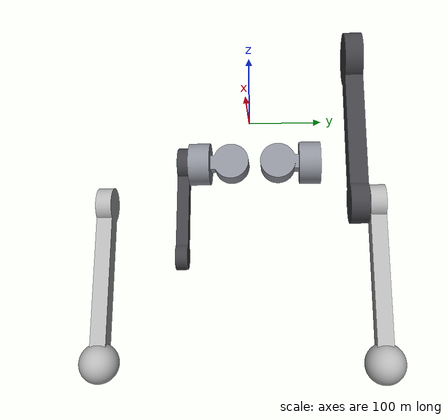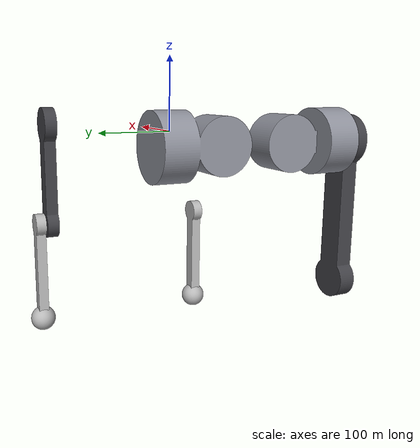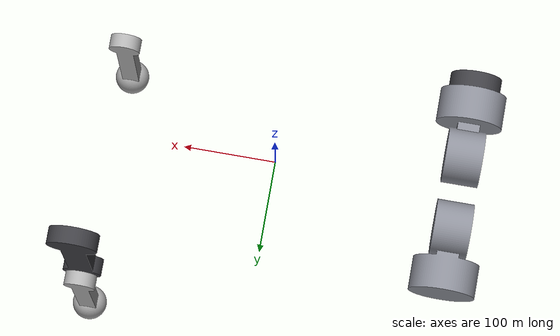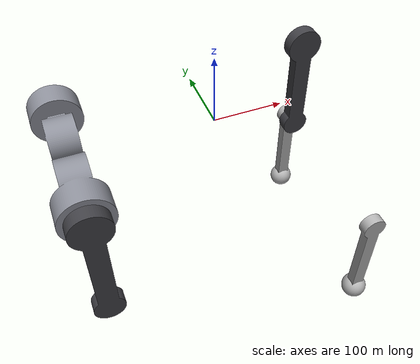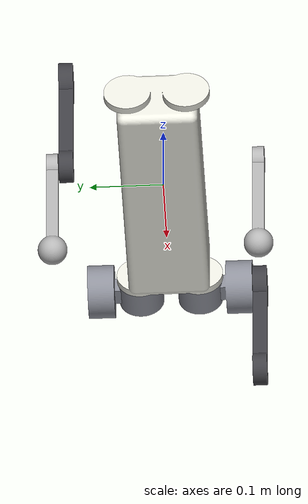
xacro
<?xml version="1.0"?>
<robot name="robot_dog" xmlns:xacro="http://www.ros.org/wiki/xacro">
  <xacro:arg name="sim_mode" default="none"/>
  <xacro:arg name="isaac_command" default="position"/>

  <xacro:include filename="$(find robot_dog_description)/urdf/robot_dog_core.xacro"/>
  <xacro:include filename="$(find robot_dog_description)/urdf/robot_dog.ros2_control.xacro"/>
  <xacro:include filename="$(find robot_dog_description)/urdf/robot_dog.gazebo.xacro"/>

  <xacro:robot_dog_ros2_control mode="$(arg sim_mode)" isaac_command="$(arg isaac_command)"/>
  <xacro:if value="${'$(arg sim_mode)' == 'gazebo'}">
    <xacro:robot_dog_gazebo controllers_file="$(find robot_dog_description)/config/ros2_controllers.yaml"/>
  </xacro:if>
</robot>

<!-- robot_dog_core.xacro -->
<!-- Generated by tools/generate_description.py from the Fusion export. Do not edit by hand. -->
<robot xmlns:xacro="http://www.ros.org/wiki/xacro">
  <material name="white"><color rgba="0.92 0.92 0.88 1"/></material>
  <material name="metal"><color rgba="0.55 0.56 0.60 1"/></material>
  <material name="dark_grey"><color rgba="0.25 0.25 0.27 1"/></material>
  <material name="light_grey"><color rgba="0.70 0.70 0.70 1"/></material>
  <link name="base_link">
    <inertial>
      <origin xyz="0.00620128 0 0.00442227" rpy="0 0 0"/>
      <mass value="4.13176"/>
      <inertia ixx="0.00788716" ixy="0" ixz="-0.00161128" iyy="0.0506551" iyz="0" izz="0.0512174"/>
    </inertial>
    <visual>
      <origin xyz="0 0 0" rpy="0 0 0"/>
      <geometry><mesh filename="package://robot_dog_description/meshes/base_link.stl"/></geometry>
      <material name="white"/>
    </visual>
    <collision name="base_link_collision_0">
      <origin xyz="0 0 0" rpy="0 0 0"/>
      <geometry><box size="0.34 0.11 0.09"/></geometry>
    </collision>
  </link>
  <link name="FL_hip">
    <inertial>
      <origin xyz="0 0.0305117 0" rpy="0 0 0"/>
      <mass value="0.71172"/>
      <inertia ixx="0.000811641" ixy="0" ixz="0" iyy="0.000366936" iyz="0" izz="0.0007836"/>
    </inertial>
    <visual>
      <origin xyz="0 0 0" rpy="0 0 0"/>
      <geometry><mesh filename="package://robot_dog_description/meshes/FL_hip.stl"/></geometry>
      <material name="metal"/>
    </visual>
    <collision name="FL_hip_collision_0">
      <origin xyz="0 0 0" rpy="0 1.5708 0"/>
      <geometry><cylinder radius="0.03" length="0.04"/></geometry>
    </collision>
    <collision name="FL_hip_collision_1">
      <origin xyz="0 0.054 0" rpy="1.5708 0 0"/>
      <geometry><cylinder radius="0.036" length="0.036"/></geometry>
    </collision>
  </link>
  <link name="FL_thigh">
    <inertial>
      <origin xyz="0 -0.0185 -0.070855" rpy="0 0 0"/>
      <mass value="0.366391"/>
      <inertia ixx="0.00149621" ixy="0" ixz="0" iyy="0.0015302" iyz="0" izz="5.60281e-05"/>
    </inertial>
    <visual>
      <origin xyz="0 0 0" rpy="0 0 0"/>
      <geometry><mesh filename="package://robot_dog_description/meshes/FL_thigh.stl"/></geometry>
      <material name="dark_grey"/>
    </visual>
    <collision name="FL_thigh_collision_0">
      <origin xyz="0 -0.0185 -0.08" rpy="0 0 0"/>
      <geometry><box size="0.028 0.019 0.16"/></geometry>
    </collision>
  </link>
  <link name="FL_calf">
    <inertial>
      <origin xyz="0 0 -0.095732" rpy="0 0 0"/>
      <mass value="0.0969247"/>
      <inertia ixx="0.000379881" ixy="0" ixz="0" iyy="0.000381502" iyz="0" izz="9.4131e-06"/>
    </inertial>
    <visual>
      <origin xyz="0 0 0" rpy="0 0 0"/>
      <geometry><mesh filename="package://robot_dog_description/meshes/FL_calf.stl"/></geometry>
      <material name="light_grey"/>
    </visual>
    <collision name="FL_calf_collision_0">
      <origin xyz="0 0 -0.07" rpy="0 0 0"/>
      <geometry><box size="0.02 0.016 0.14"/></geometry>
    </collision>
    <collision name="FL_foot_collision">
      <origin xyz="0 0 -0.16" rpy="0 0 0"/>
      <geometry><sphere radius="0.02"/></geometry>
    </collision>
  </link>
  <link name="FR_hip">
    <inertial>
      <origin xyz="0 -0.0305117 0" rpy="0 0 0"/>
      <mass value="0.71172"/>
      <inertia ixx="0.000811641" ixy="0" ixz="0" iyy="0.000366936" iyz="0" izz="0.0007836"/>
    </inertial>
    <visual>
      <origin xyz="0 0 0" rpy="0 0 0"/>
      <geometry><mesh filename="package://robot_dog_description/meshes/FR_hip.stl"/></geometry>
      <material name="metal"/>
    </visual>
    <collision name="FR_hip_collision_0">
      <origin xyz="0 0 0" rpy="0 1.5708 0"/>
      <geometry><cylinder radius="0.03" length="0.04"/></geometry>
    </collision>
    <collision name="FR_hip_collision_1">
      <origin xyz="0 -0.054 0" rpy="1.5708 0 0"/>
      <geometry><cylinder radius="0.036" length="0.036"/></geometry>
    </collision>
  </link>
  <link name="FR_thigh">
    <inertial>
      <origin xyz="0 0.0185 -0.070855" rpy="0 0 0"/>
      <mass value="0.366391"/>
      <inertia ixx="0.00149621" ixy="0" ixz="0" iyy="0.0015302" iyz="0" izz="5.60281e-05"/>
    </inertial>
    <visual>
      <origin xyz="0 0 0" rpy="0 0 0"/>
      <geometry><mesh filename="package://robot_dog_description/meshes/FR_thigh.stl"/></geometry>
      <material name="dark_grey"/>
    </visual>
    <collision name="FR_thigh_collision_0">
      <origin xyz="0 0.0185 -0.08" rpy="0 0 0"/>
      <geometry><box size="0.028 0.019 0.16"/></geometry>
    </collision>
  </link>
  <link name="FR_calf">
    <inertial>
      <origin xyz="0 0 -0.095732" rpy="0 0 0"/>
      <mass value="0.0969247"/>
      <inertia ixx="0.000379881" ixy="0" ixz="0" iyy="0.000381502" iyz="0" izz="9.4131e-06"/>
    </inertial>
    <visual>
      <origin xyz="0 0 0" rpy="0 0 0"/>
      <geometry><mesh filename="package://robot_dog_description/meshes/FR_calf.stl"/></geometry>
      <material name="light_grey"/>
    </visual>
    <collision name="FR_calf_collision_0">
      <origin xyz="0 0 -0.07" rpy="0 0 0"/>
      <geometry><box size="0.02 0.016 0.14"/></geometry>
    </collision>
    <collision name="FR_foot_collision">
      <origin xyz="0 0 -0.16" rpy="0 0 0"/>
      <geometry><sphere radius="0.02"/></geometry>
    </collision>
  </link>
  <link name="RL_hip">
    <inertial>
      <origin xyz="0 0.0305117 0" rpy="0 0 0"/>
      <mass value="0.71172"/>
      <inertia ixx="0.000811641" ixy="0" ixz="0" iyy="0.000366936" iyz="0" izz="0.0007836"/>
    </inertial>
    <visual>
      <origin xyz="0 0 0" rpy="0 0 0"/>
      <geometry><mesh filename="package://robot_dog_description/meshes/RL_hip.stl"/></geometry>
      <material name="metal"/>
    </visual>
    <collision name="RL_hip_collision_0">
      <origin xyz="0 0 0" rpy="0 1.5708 0"/>
      <geometry><cylinder radius="0.03" length="0.04"/></geometry>
    </collision>
    <collision name="RL_hip_collision_1">
      <origin xyz="0 0.054 0" rpy="1.5708 0 0"/>
      <geometry><cylinder radius="0.036" length="0.036"/></geometry>
    </collision>
  </link>
  <link name="RL_thigh">
    <inertial>
      <origin xyz="0 -0.0185 -0.070855" rpy="0 0 0"/>
      <mass value="0.366391"/>
      <inertia ixx="0.00149621" ixy="0" ixz="0" iyy="0.0015302" iyz="0" izz="5.60281e-05"/>
    </inertial>
    <visual>
      <origin xyz="0 0 0" rpy="0 0 0"/>
      <geometry><mesh filename="package://robot_dog_description/meshes/RL_thigh.stl"/></geometry>
      <material name="dark_grey"/>
    </visual>
    <collision name="RL_thigh_collision_0">
      <origin xyz="0 -0.0185 -0.08" rpy="0 0 0"/>
      <geometry><box size="0.028 0.019 0.16"/></geometry>
    </collision>
  </link>
  <link name="RL_calf">
    <inertial>
      <origin xyz="0 0 -0.095732" rpy="0 0 0"/>
      <mass value="0.0969247"/>
      <inertia ixx="0.000379881" ixy="0" ixz="0" iyy="0.000381502" iyz="0" izz="9.4131e-06"/>
    </inertial>
    <visual>
      <origin xyz="0 0 0" rpy="0 0 0"/>
      <geometry><mesh filename="package://robot_dog_description/meshes/RL_calf.stl"/></geometry>
      <material name="light_grey"/>
    </visual>
    <collision name="RL_calf_collision_0">
      <origin xyz="0 0 -0.07" rpy="0 0 0"/>
      <geometry><box size="0.02 0.016 0.14"/></geometry>
    </collision>
    <collision name="RL_foot_collision">
      <origin xyz="0 0 -0.16" rpy="0 0 0"/>
      <geometry><sphere radius="0.02"/></geometry>
    </collision>
  </link>
  <link name="RR_hip">
    <inertial>
      <origin xyz="0 -0.0305117 0" rpy="0 0 0"/>
      <mass value="0.71172"/>
      <inertia ixx="0.000811641" ixy="0" ixz="0" iyy="0.000366936" iyz="0" izz="0.0007836"/>
    </inertial>
    <visual>
      <origin xyz="0 0 0" rpy="0 0 0"/>
      <geometry><mesh filename="package://robot_dog_description/meshes/RR_hip.stl"/></geometry>
      <material name="metal"/>
    </visual>
    <collision name="RR_hip_collision_0">
      <origin xyz="0 0 0" rpy="0 1.5708 0"/>
      <geometry><cylinder radius="0.03" length="0.04"/></geometry>
    </collision>
    <collision name="RR_hip_collision_1">
      <origin xyz="0 -0.054 0" rpy="1.5708 0 0"/>
      <geometry><cylinder radius="0.036" length="0.036"/></geometry>
    </collision>
  </link>
  <link name="RR_thigh">
    <inertial>
      <origin xyz="0 0.0185 -0.070855" rpy="0 0 0"/>
      <mass value="0.366391"/>
      <inertia ixx="0.00149621" ixy="0" ixz="0" iyy="0.0015302" iyz="0" izz="5.60281e-05"/>
    </inertial>
    <visual>
      <origin xyz="0 0 0" rpy="0 0 0"/>
      <geometry><mesh filename="package://robot_dog_description/meshes/RR_thigh.stl"/></geometry>
      <material name="dark_grey"/>
    </visual>
    <collision name="RR_thigh_collision_0">
      <origin xyz="0 0.0185 -0.08" rpy="0 0 0"/>
      <geometry><box size="0.028 0.019 0.16"/></geometry>
    </collision>
  </link>
  <link name="RR_calf">
    <inertial>
      <origin xyz="0 0 -0.095732" rpy="0 0 0"/>
      <mass value="0.0969247"/>
      <inertia ixx="0.000379881" ixy="0" ixz="0" iyy="0.000381502" iyz="0" izz="9.4131e-06"/>
    </inertial>
    <visual>
      <origin xyz="0 0 0" rpy="0 0 0"/>
      <geometry><mesh filename="package://robot_dog_description/meshes/RR_calf.stl"/></geometry>
      <material name="light_grey"/>
    </visual>
    <collision name="RR_calf_collision_0">
      <origin xyz="0 0 -0.07" rpy="0 0 0"/>
      <geometry><box size="0.02 0.016 0.14"/></geometry>
    </collision>
    <collision name="RR_foot_collision">
      <origin xyz="0 0 -0.16" rpy="0 0 0"/>
      <geometry><sphere radius="0.02"/></geometry>
    </collision>
  </link>
  <joint name="FL_hip_joint" type="revolute">
    <parent link="base_link"/>
    <child link="FL_hip"/>
    <origin xyz="0.2 0.04 0" rpy="0 0 0"/>
    <axis xyz="1 0 0"/>
    <limit lower="-0.8" upper="0.8" effort="25" velocity="30"/>
    <dynamics damping="0.01" friction="0"/>
  </joint>
  <joint name="FL_thigh_joint" type="revolute">
    <parent link="FL_hip"/>
    <child link="FL_thigh"/>
    <origin xyz="0 0.1 0" rpy="0 0 0"/>
    <axis xyz="0 1 0"/>
    <limit lower="-1.57" upper="3.49" effort="25" velocity="30"/>
    <dynamics damping="0.01" friction="0"/>
  </joint>
  <joint name="FL_calf_joint" type="revolute">
    <parent link="FL_thigh"/>
    <child link="FL_calf"/>
    <origin xyz="0 0 -0.16" rpy="0 0 0"/>
    <axis xyz="0 1 0"/>
    <limit lower="-2.7" upper="0" effort="25" velocity="30"/>
    <dynamics damping="0.01" friction="0"/>
  </joint>
  <joint name="FR_hip_joint" type="revolute">
    <parent link="base_link"/>
    <child link="FR_hip"/>
    <origin xyz="0.2 -0.04 0" rpy="0 0 0"/>
    <axis xyz="1 0 0"/>
    <limit lower="-0.8" upper="0.8" effort="25" velocity="30"/>
    <dynamics damping="0.01" friction="0"/>
  </joint>
  <joint name="FR_thigh_joint" type="revolute">
    <parent link="FR_hip"/>
    <child link="FR_thigh"/>
    <origin xyz="0 -0.1 0" rpy="0 0 0"/>
    <axis xyz="0 1 0"/>
    <limit lower="-1.57" upper="3.49" effort="25" velocity="30"/>
    <dynamics damping="0.01" friction="0"/>
  </joint>
  <joint name="FR_calf_joint" type="revolute">
    <parent link="FR_thigh"/>
    <child link="FR_calf"/>
    <origin xyz="0 0 -0.16" rpy="0 0 0"/>
    <axis xyz="0 1 0"/>
    <limit lower="-2.7" upper="0" effort="25" velocity="30"/>
    <dynamics damping="0.01" friction="0"/>
  </joint>
  <joint name="RL_hip_joint" type="revolute">
    <parent link="base_link"/>
    <child link="RL_hip"/>
    <origin xyz="-0.2 0.04 0" rpy="0 0 0"/>
    <axis xyz="1 0 0"/>
    <limit lower="-0.8" upper="0.8" effort="25" velocity="30"/>
    <dynamics damping="0.01" friction="0"/>
  </joint>
  <joint name="RL_thigh_joint" type="revolute">
    <parent link="RL_hip"/>
    <child link="RL_thigh"/>
    <origin xyz="0 0.1 0" rpy="0 0 0"/>
    <axis xyz="0 1 0"/>
    <limit lower="-1.57" upper="3.49" effort="25" velocity="30"/>
    <dynamics damping="0.01" friction="0"/>
  </joint>
  <joint name="RL_calf_joint" type="revolute">
    <parent link="RL_thigh"/>
    <child link="RL_calf"/>
    <origin xyz="0 0 -0.16" rpy="0 0 0"/>
    <axis xyz="0 1 0"/>
    <limit lower="-2.7" upper="0" effort="25" velocity="30"/>
    <dynamics damping="0.01" friction="0"/>
  </joint>
  <joint name="RR_hip_joint" type="revolute">
    <parent link="base_link"/>
    <child link="RR_hip"/>
    <origin xyz="-0.2 -0.04 0" rpy="0 0 0"/>
    <axis xyz="1 0 0"/>
    <limit lower="-0.8" upper="0.8" effort="25" velocity="30"/>
    <dynamics damping="0.01" friction="0"/>
  </joint>
  <joint name="RR_thigh_joint" type="revolute">
    <parent link="RR_hip"/>
    <child link="RR_thigh"/>
    <origin xyz="0 -0.1 0" rpy="0 0 0"/>
    <axis xyz="0 1 0"/>
    <limit lower="-1.57" upper="3.49" effort="25" velocity="30"/>
    <dynamics damping="0.01" friction="0"/>
  </joint>
  <joint name="RR_calf_joint" type="revolute">
    <parent link="RR_thigh"/>
    <child link="RR_calf"/>
    <origin xyz="0 0 -0.16" rpy="0 0 0"/>
    <axis xyz="0 1 0"/>
    <limit lower="-2.7" upper="0" effort="25" velocity="30"/>
    <dynamics damping="0.01" friction="0"/>
  </joint>
  <!-- Sensor frames: the sensor bodies are part of base_link; these only give ROS frame_ids. -->
  <link name="imu_link"/>
  <joint name="imu_joint" type="fixed">
    <parent link="base_link"/>
    <child link="imu_link"/>
    <origin xyz="0 0 0.048" rpy="0 0 0"/>
  </joint>
  <link name="laser_link"/>
  <joint name="laser_joint" type="fixed">
    <parent link="base_link"/>
    <child link="laser_link"/>
    <origin xyz="0.08 0 0.085" rpy="0 0 0"/>
  </joint>
  <link name="camera_link"/>
  <joint name="camera_joint" type="fixed">
    <parent link="base_link"/>
    <child link="camera_link"/>
    <origin xyz="0.178 0 0.0575" rpy="0 0 0"/>
  </joint>
  <link name="camera_optical_link"/>
  <joint name="camera_optical_joint" type="fixed">
    <parent link="camera_link"/>
    <child link="camera_optical_link"/>
    <origin xyz="0 0 0" rpy="-1.5708 0 -1.5708"/>
  </joint>
  <!-- Foot frames (contact point at the foot sphere center) for kinematics / state estimation. -->
  <link name="FL_foot"/>
  <joint name="FL_foot_joint" type="fixed">
    <parent link="FL_calf"/>
    <child link="FL_foot"/>
    <origin xyz="0 0 -0.16" rpy="0 0 0"/>
  </joint>
  <link name="FR_foot"/>
  <joint name="FR_foot_joint" type="fixed">
    <parent link="FR_calf"/>
    <child link="FR_foot"/>
    <origin xyz="0 0 -0.16" rpy="0 0 0"/>
  </joint>
  <link name="RL_foot"/>
  <joint name="RL_foot_joint" type="fixed">
    <parent link="RL_calf"/>
    <child link="RL_foot"/>
    <origin xyz="0 0 -0.16" rpy="0 0 0"/>
  </joint>
  <link name="RR_foot"/>
  <joint name="RR_foot_joint" type="fixed">
    <parent link="RR_calf"/>
    <child link="RR_foot"/>
    <origin xyz="0 0 -0.16" rpy="0 0 0"/>
  </joint>
</robot>
